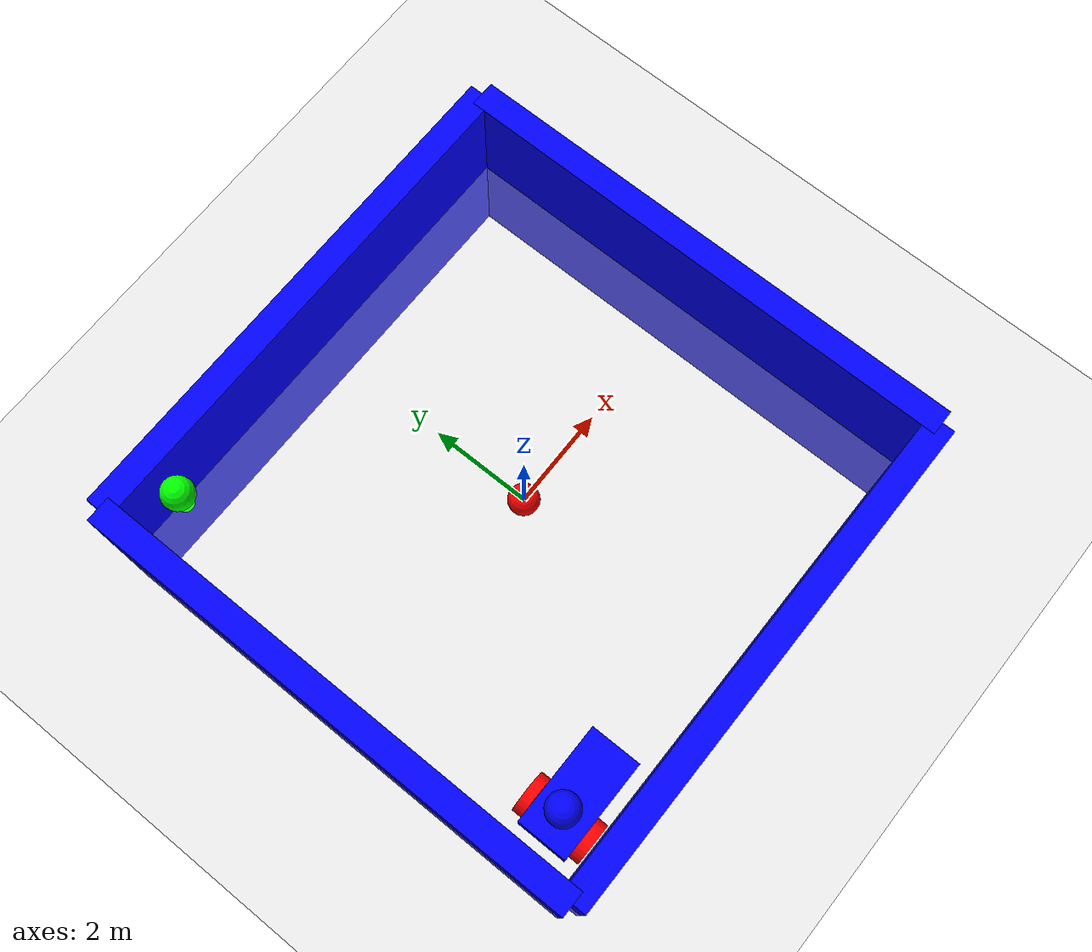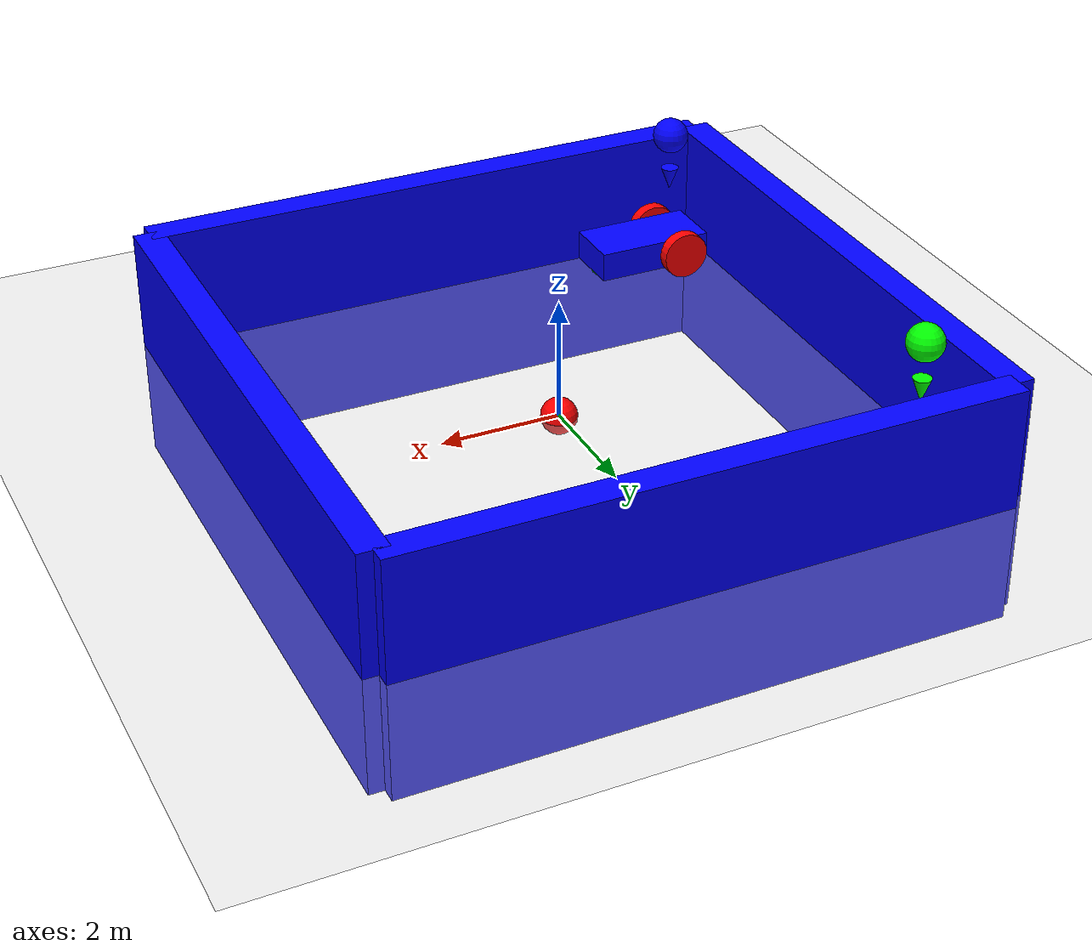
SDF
<?xml version="1.0"?>
<sdf version="1.10">
  <world name="maze_world">

    <!-- Physics & plugins -->
    <physics name="1ms" type="ignored">
      <max_step_size>0.001</max_step_size>
      <real_time_factor>1.0</real_time_factor>
    </physics>
    <plugin filename="gz-sim-physics-system" name="gz::sim::systems::Physics" />
    <plugin filename="gz-sim-user-commands-system" name="gz::sim::systems::UserCommands" />
    <plugin filename="gz-sim-scene-broadcaster-system" name="gz::sim::systems::SceneBroadcaster" />

    <!-- Light -->
    <light type="directional" name="sun">
      <cast_shadows>true</cast_shadows>
      <pose>0 0 10 0 0 0</pose>
      <diffuse>0.8 0.8 0.8 1</diffuse>
      <specular>0.2 0.2 0.2 1</specular>
      <attenuation>
        <range>1000</range>
        <constant>0.9</constant>
        <linear>0.01</linear>
        <quadratic>0.001</quadratic>
      </attenuation>
      <direction>-0.5 0.1 -0.9</direction>
    </light>

    <!-- Ground -->
    <model name="ground_plane">
      <static>true</static>
      <link name="link">
        <collision name="collision">
          <geometry>
            <plane>
              <normal>0 0 1</normal>
            </plane>
          </geometry>
        </collision>
        <visual name="visual">
          <geometry>
            <plane>
              <normal>0 0 1</normal>
              <size>100 100</size>
            </plane>
          </geometry>
          <material>
            <ambient>0.8 0.8 0.8 1</ambient>
            <diffuse>0.8 0.8 0.8 1</diffuse>
          </material>
        </visual>
      </link>
    </model>

    <!-- === Maze walls === -->

    <!-- Outer boundary -->
    <model name="wall_bottom">
      <static>true</static>
      <pose>0 -5 0 0 0 1.5708</pose>
      <link name="link">
        <visual name="visual">
          <geometry>
            <box>
              <size>0.5 10.0 4.0</size>
            </box>
          </geometry>
          <material>
            <ambient>0 0 1 1</ambient>
          </material>
        </visual>
        <collision name="collision">
          <geometry>
            <box>
              <size>0.5 10.0 4.0</size>
            </box>
          </geometry>
        </collision>
      </link>
    </model>

    <model name="wall_top">
      <static>true</static>
      <pose>0 5 0 0 0 1.5708</pose>
      <link name="link">
        <visual name="visual">
          <geometry>
            <box>
              <size>0.5 10.0 4.0</size>
            </box>
          </geometry>
          <material>
            <ambient>0 0 1 1</ambient>
          </material>
        </visual>
        <collision name="collision">
          <geometry>
            <box>
              <size>0.5 10.0 4.0</size>
            </box>
          </geometry>
        </collision>
      </link>
    </model>

    <model name="wall_left">
      <static>true</static>
      <pose>-5 0 0 0 0 0</pose>
      <link name="link">
        <visual name="visual">
          <geometry>
            <box>
              <size>0.5 10.0 4.0</size>
            </box>
          </geometry>
          <material>
            <ambient>0 0 1 1</ambient>
          </material>
        </visual>
        <collision name="collision">
          <geometry>
            <box>
              <size>0.5 10.0 4.0</size>
            </box>
          </geometry>
        </collision>
      </link>
    </model>

    <model name="wall_right">
      <static>true</static>
      <pose>5 0 0 0 0 0</pose>
      <link name="link">
        <visual name="visual">
          <geometry>
            <box>
              <size>0.5 10.0 4.0</size>
            </box>
          </geometry>
          <material>
            <ambient>0 0 1 1</ambient>
          </material>
        </visual>
        <collision name="collision">
          <geometry>
            <box>
              <size>0.5 10.0 4.0</size>
            </box>
          </geometry>
        </collision>
      </link>
    </model>

    <!-- Origin Marker -->

    <model name="Origin">
      <static>true</static>
      <pose>0 0 0 0 0 0</pose>
      <link name="link">
        <visual name="sphere">
          <geometry>
            <sphere>
              <radius>0.3</radius>
            </sphere>
          </geometry>
          <material>
            <ambient>1 0 0 1</ambient>
            <diffuse>1 0 0 1</diffuse>
          </material>
        </visual>
      </link>
    </model>

    <!-- === Start & Goal markers === -->

    <model name="Start">
      <static>true</static>
      <pose>-4 -4 2 0 0 0</pose>
      <link name="link">

        <!-- Sphere part (head of the pin) -->
        <visual name="pin_head">
          <pose>0 0 0.4 0 0 0</pose>
          <geometry>
            <sphere>
              <radius>0.3</radius>
            </sphere>
          </geometry>
          <material>
            <ambient>0 0 1 1</ambient>
            <diffuse>0 0 1 1</diffuse>
          </material>
        </visual>

        <!-- Cone part (tip of the pin) -->
        <visual name="pin_tip">
          <pose>0 0 -0.2 0 0 0</pose>
          <geometry>
            <mesh>
              <uri>stl/cone.stl</uri>
              <!-- optional: adjust mesh scaling if you want a larger/smaller cone -->
            </mesh>
          </geometry>
          <material>
            <ambient>0 0 1 1</ambient>
            <diffuse>0 0 1 1</diffuse>
          </material>
        </visual>

      </link>
    </model>

    <model name="Goal">
      <static>true</static>
      <pose>-4 4 2 0 0 0</pose>
      <link name="link">

        <!-- Sphere part (head of the pin) -->
        <visual name="pin_head">
          <pose>0 0 0.4 0 0 0</pose>
          <geometry>
            <sphere>
              <radius>0.3</radius>
            </sphere>
          </geometry>
          <material>
            <ambient>0 1 0 1</ambient>
            <diffuse>0 1 0 1</diffuse>
          </material>
        </visual>

        <!-- Cone part (tip of the pin) -->
        <visual name="pin_tip">
          <pose>0 0 -0.2 0 0 0</pose>
          <geometry>
            <mesh>
              <uri>stl/cone.stl</uri>
              <!-- optional: adjust mesh scaling if you want a larger/smaller cone -->
            </mesh>
          </geometry>
          <material>
            <ambient>0 1 0 1</ambient>
            <diffuse>0 1 0 1</diffuse>
          </material>
        </visual>

      </link>
    </model>

    <!-- Vehicle Model -->
    <model name='vehicle_blue' canonical_link='chassis'>
      <pose relative_to='world'>-4 -4 0 0 0 0</pose>
      <link name='chassis'>
        <pose relative_to='__model__'>0.5 0 0.4 0 0 0</pose>
        <inertial> <!--inertial
                    properties of the link mass, inertia matix-->
          <mass>1.14395</mass>
          <inertia>
            <ixx>0.095329</ixx>
            <ixy>0</ixy>
            <ixz>0</ixz>
            <iyy>0.381317</iyy>
            <iyz>0</iyz>
            <izz>0.476646</izz>
          </inertia>
        </inertial>
        <visual name='visual'>
          <geometry>
            <box>
              <size>2.0 1.0 0.5</size>
            </box>
          </geometry>
          <!--let's
                    add color to our link-->
          <material>
            <ambient>0.0 0.0 1.0 1</ambient>
            <diffuse>0.0 0.0 1.0 1</diffuse>
            <specular>0.0 0.0 1.0 1</specular>
          </material>
        </visual>
        <collision name='collision'>
          <geometry>
            <box>
              <size>2.0 1.0 0.5</size>
            </box>
          </geometry>
        </collision>

        <sensor name='gpu_lidar' type='gpu_lidar'>" <pose relative_to='lidar_frame'>0 0 0 0
            0 0</pose>
    <topic>lidar</topic>
    <update_rate>10</update_rate>
    <ray>
            <scan>
              <horizontal>
                <samples>640</samples>
                <resolution>1</resolution>
                <min_angle>-1.396263</min_angle>
                <max_angle>1.396263</max_angle>
              </horizontal>
              <vertical>
                <samples>1</samples>
                <resolution>0.01</resolution>
                <min_angle>0</min_angle>
                <max_angle>0</max_angle>
              </vertical>
            </scan>
            <range>
              <min>0.08</min>
              <max>10.0</max>
              <resolution>0.01</resolution>
            </range>
          </ray>
    <always_on>
            1</always_on>
    <visualize>true</visualize>
        </sensor>
      </link>

      <link name='left_wheel'>
        <pose relative_to="chassis">-0.5 0.6 0 -1.5707 0 0</pose>
        <inertial>
          <mass>1</mass>
          <inertia>
            <ixx>0.043333</ixx>
            <ixy>0</ixy>
            <ixz>0</ixz>
            <iyy>0.043333</iyy>
            <iyz>0</iyz>
            <izz>0.08</izz>
          </inertia>
        </inertial>
        <visual name='visual'>
          <geometry>
            <cylinder>
              <radius>0.4</radius>
              <length>0.2</length>
            </cylinder>
          </geometry>
          <material>
            <ambient>1.0 0.0 0.0 1</ambient>
            <diffuse>1.0 0.0 0.0 1</diffuse>
            <specular>1.0 0.0 0.0 1</specular>
          </material>
        </visual>
        <collision name='collision'>
          <geometry>
            <cylinder>
              <radius>0.4</radius>
              <length>0.2</length>
            </cylinder>
          </geometry>
        </collision>
      </link>

      <!--The
            same as left wheel but with different position-->
      <link name='right_wheel'>
        <pose relative_to="chassis">-0.5 -0.6 0 -1.5707 0 0</pose> <!--angles
                are in radian-->
        <inertial>
          <mass>1</mass>
          <inertia>
            <ixx>0.043333</ixx>
            <ixy>0</ixy>
            <ixz>0</ixz>
            <iyy>0.043333</iyy>
            <iyz>0</iyz>
            <izz>0.08</izz>
          </inertia>
        </inertial>
        <visual name='visual'>
          <geometry>
            <cylinder>
              <radius>0.4</radius>
              <length>0.2</length>
            </cylinder>
          </geometry>
          <material>
            <ambient>1.0 0.0 0.0 1</ambient>
            <diffuse>1.0 0.0 0.0 1</diffuse>
            <specular>1.0 0.0 0.0 1</specular>
          </material>
        </visual>
        <collision name='collision'>
          <geometry>
            <cylinder>
              <radius>0.4</radius>
              <length>0.2</length>
            </cylinder>
          </geometry>
        </collision>
      </link>

      <frame name="caster_frame" attached_to='chassis'>
        <pose>0.8 0 -0.2 0 0 0</pose>
      </frame>

      <!--caster
            wheel-->
      <link name='caster'>
        <pose relative_to='caster_frame' />
        <inertial>
          <mass>1</mass>
          <inertia>
            <ixx>0.016</ixx>
            <ixy>0</ixy>
            <ixz>0</ixz>
            <iyy>0.016</iyy>
            <iyz>0</iyz>
            <izz>0.016</izz>
          </inertia>
        </inertial>
        <visual name='visual'>
          <geometry>
            <sphere>
              <radius>0.2</radius>
            </sphere>
          </geometry>
          <material>
            <ambient>0.0 1 0.0 1</ambient>
            <diffuse>0.0 1 0.0 1</diffuse>
            <specular>0.0 1 0.0 1</specular>
          </material>
        </visual>
        <collision name='collision'>
          <geometry>
            <sphere>
              <radius>0.2</radius>
            </sphere>
          </geometry>
        </collision>
      </link>

      <joint name='left_wheel_joint' type='revolute'>
        <pose relative_to='left_wheel' />
        <parent>chassis</parent>
        <child>left_wheel</child>
        <axis>
          <xyz expressed_in='__model__'>0 1 0</xyz> <!--can
                    be defined as any frame or even arbitrary frames-->
          <limit>
            <lower>-1.79769e+308</lower>    <!--negative
                        infinity-->
            <upper>1.79769e+308</upper>     <!--positive
                        infinity-->
          </limit>
        </axis>
      </joint>

      <joint name='right_wheel_joint' type='revolute'>
        <pose relative_to='right_wheel' />
        <parent>chassis</parent>
        <child>right_wheel</child>
        <axis>
          <xyz expressed_in='__model__'>0 1 0</xyz>
          <limit>
            <lower>-1.79769e+308</lower>    <!--negative
                        infinity-->
            <upper>1.79769e+308</upper>     <!--positive
                        infinity-->
          </limit>
        </axis>
      </joint>

      <joint name='caster_wheel' type='ball'>
        <parent>chassis</parent>
        <child>caster</child>
      </joint>

      <plugin
        filename="gz-sim-diff-drive-system"
        name="gz::sim::systems::DiffDrive">
        <left_joint>left_wheel_joint</left_joint>
        <right_joint>right_wheel_joint</right_joint>
        <wheel_separation>1.2</wheel_separation>
        <wheel_radius>0.4</wheel_radius>
        <odom_publish_frequency>1</odom_publish_frequency>
        <topic>cmd_vel</topic>
      </plugin>

      <frame name="lidar_frame" attached_to='chassis'>
        <pose>0.8 0 0.5 0 0 0</pose>
      </frame>

      <plugin
        filename="gz-sim-sensors-system"
        name="gz::sim::systems::Sensors">
        <render_engine>ogre2</render_engine>
      </plugin>

    </model>

  </world>
</sdf>
